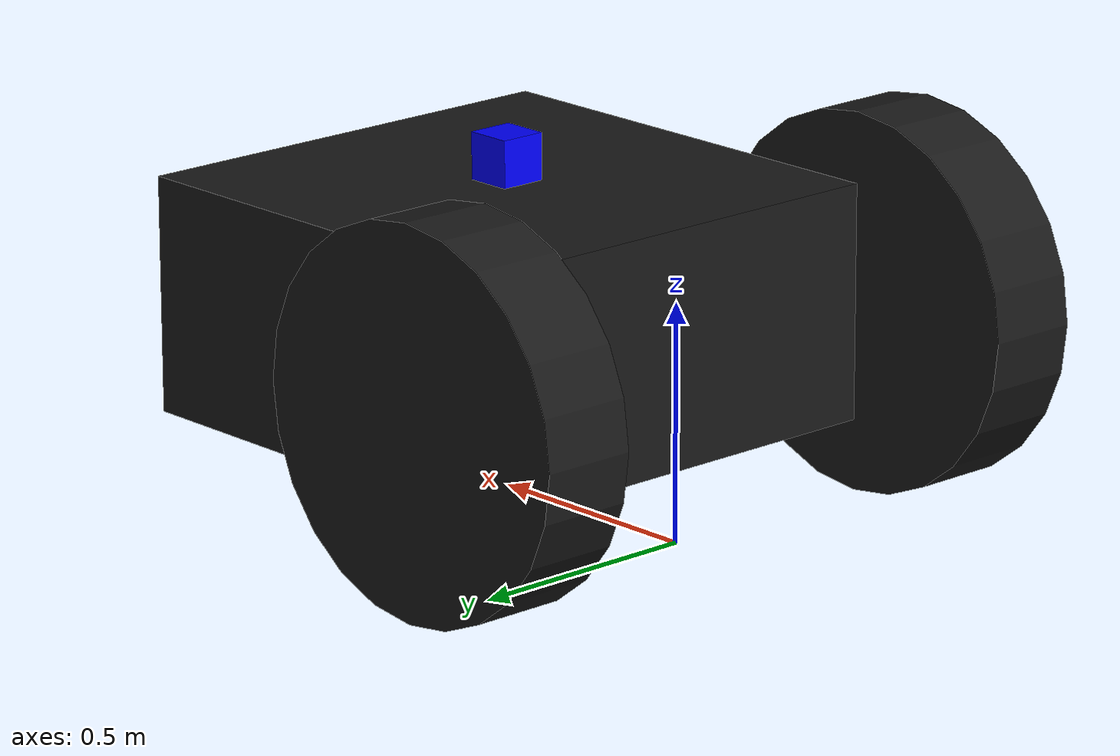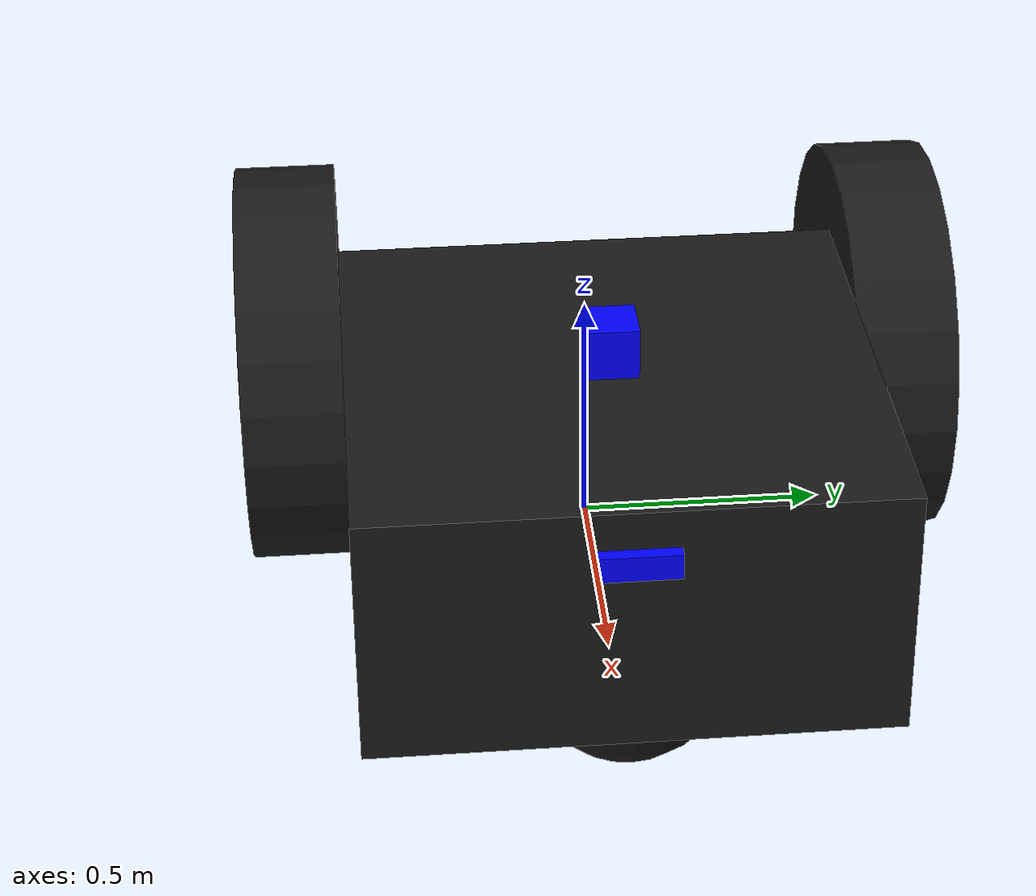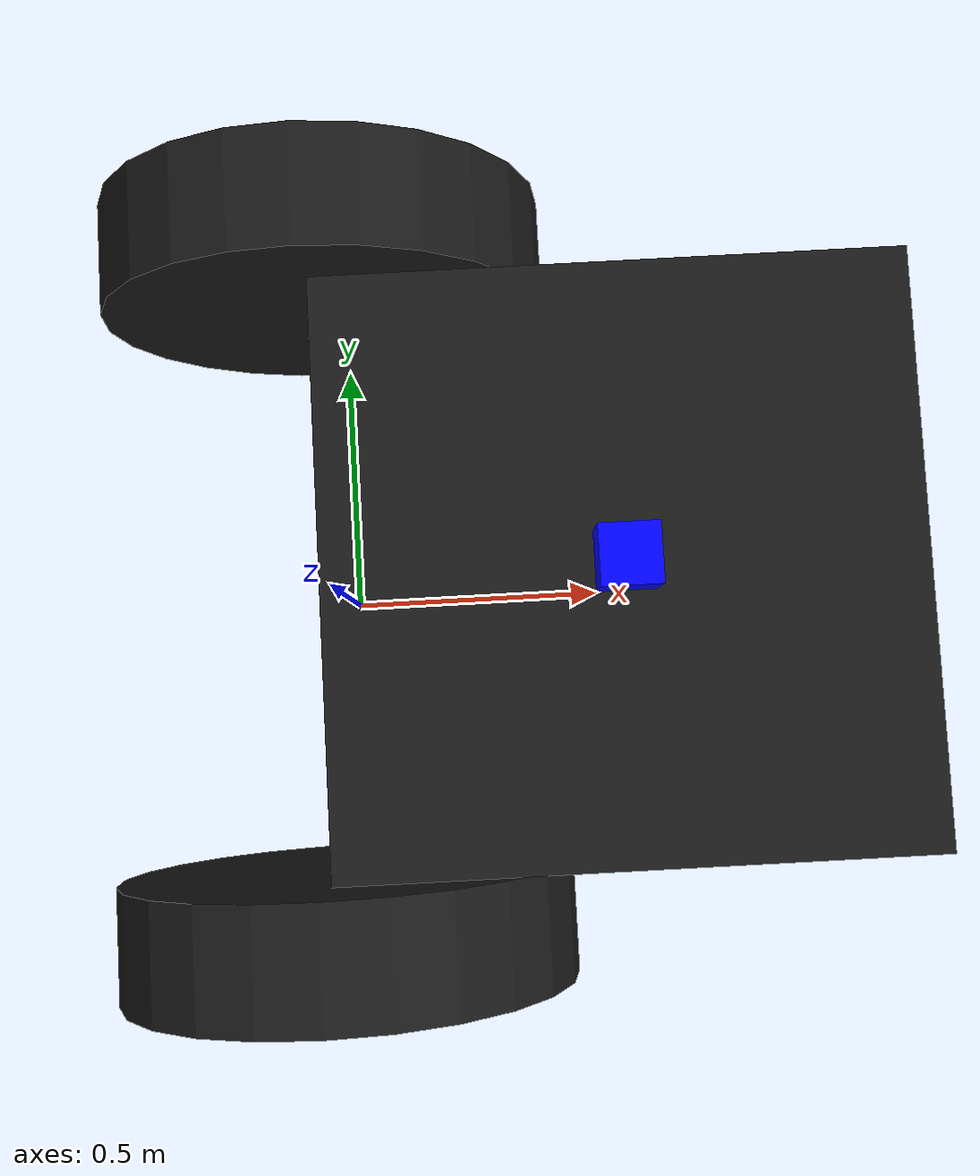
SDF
<?xml version="1.0" ?>
<sdf version='1.9'>

    <model name='f1d2' canonical_link='base_link'>
        <plugin name='ignition::gazebo::systems::Imu' filename='ignition-gazebo-imu-system'/>
        <plugin name='ignition::gazebo::systems::Sensors' filename='ignition-gazebo-sensors-system'>
            <render_engine>ogre2</render_engine>
        </plugin>

        <pose>0 0 0 0 0 0</pose>
        <link name='base_link'>
            <pose>0.5 0 0.4 0 -0 0</pose>
            <inertial>
                <mass>1.14395</mass>
                <inertia>
                    <ixx>0.126164</ixx>
                    <ixy>0</ixy>
                    <ixz>0</ixz>
                    <iyy>0.41651</iyy>
                    <iyz>0</iyz>
                    <izz>0.481014</izz>
                </inertia>
                <pose>0 0 0 0 -0 0</pose>
            </inertial>
            <visual name='visual'>
                <geometry>
                    <box>
                        <size>1 1 0.5</size>
                    </box>
                </geometry>
                <material>
                    <ambient>0.1 0.1 0.1 1</ambient>
                    <diffuse>0.1 0.1 0.1 1</diffuse>
                    <specular>0.1 0.1 0.1 1</specular>
                </material>
            </visual>
            <collision name='collision'>
                <geometry>
                    <box>
                        <size>1 1 0.5</size>
                    </box>
                </geometry>
                <surface>
                    <friction>
                        <ode/>
                    </friction>
                    <bounce/>
                    <contact/>
                </surface>
            </collision>
            <sensor name='imu_sensor' type='imu'>
                <pose>0 0 0 0 -0 0</pose>
                <topic>imu</topic>
                <update_rate>1</update_rate>
                <enable_metrics>false</enable_metrics>
                <imu>
                    <orientation_reference_frame>
                        <localization>CUSTOM</localization>
                        <custom_rpy>0 0 0</custom_rpy>
                        <grav_dir_x>1 0 0</grav_dir_x>
                    </orientation_reference_frame>
                    <angular_velocity>
                        <x>
                            <noise type='none'>
                                <mean>0</mean>
                                <stddev>0</stddev>
                                <bias_mean>0</bias_mean>
                                <bias_stddev>0</bias_stddev>
                                <dynamic_bias_stddev>0</dynamic_bias_stddev>
                                <dynamic_bias_correlation_time>0</dynamic_bias_correlation_time>
                                <precision>0</precision>
                            </noise>
                        </x>
                        <y>
                            <noise type='none'>
                                <mean>0</mean>
                                <stddev>0</stddev>
                                <bias_mean>0</bias_mean>
                                <bias_stddev>0</bias_stddev>
                                <dynamic_bias_stddev>0</dynamic_bias_stddev>
                                <dynamic_bias_correlation_time>0</dynamic_bias_correlation_time>
                                <precision>0</precision>
                            </noise>
                        </y>
                        <z>
                            <noise type='none'>
                                <mean>0</mean>
                                <stddev>0</stddev>
                                <bias_mean>0</bias_mean>
                                <bias_stddev>0</bias_stddev>
                                <dynamic_bias_stddev>0</dynamic_bias_stddev>
                                <dynamic_bias_correlation_time>0</dynamic_bias_correlation_time>
                                <precision>0</precision>
                            </noise>
                        </z>
                    </angular_velocity>
                    <linear_acceleration>
                        <x>
                            <noise type='none'>
                                <mean>0</mean>
                                <stddev>0</stddev>
                                <bias_mean>0</bias_mean>
                                <bias_stddev>0</bias_stddev>
                                <dynamic_bias_stddev>0</dynamic_bias_stddev>
                                <dynamic_bias_correlation_time>0</dynamic_bias_correlation_time>
                                <precision>0</precision>
                            </noise>
                        </x>
                        <y>
                            <noise type='none'>
                                <mean>0</mean>
                                <stddev>0</stddev>
                                <bias_mean>0</bias_mean>
                                <bias_stddev>0</bias_stddev>
                                <dynamic_bias_stddev>0</dynamic_bias_stddev>
                                <dynamic_bias_correlation_time>0</dynamic_bias_correlation_time>
                                <precision>0</precision>
                            </noise>
                        </y>
                        <z>
                            <noise type='none'>
                                <mean>0</mean>
                                <stddev>0</stddev>
                                <bias_mean>0</bias_mean>
                                <bias_stddev>0</bias_stddev>
                                <dynamic_bias_stddev>0</dynamic_bias_stddev>
                                <dynamic_bias_correlation_time>0</dynamic_bias_correlation_time>
                                <precision>0</precision>
                            </noise>
                        </z>
                    </linear_acceleration>
                    <enable_orientation>true</enable_orientation>
                </imu>
            </sensor>
            <enable_wind>false</enable_wind>
        </link>

        <link name='left_wheel'>
            <pose>-0 0.6 0.4 -1.5707 -0 0</pose>
            <inertial>
                <mass>2</mass>
                <inertia>
                    <ixx>0.145</ixx>
                    <ixy>0</ixy>
                    <ixz>0</ixz>
                    <iyy>0.145</iyy>
                    <iyz>0</iyz>
                    <izz>0.125</izz>
                </inertia>
                <pose>0 0 0 0 -0 0</pose>
            </inertial>
            <visual name='visual'>
                <geometry>
                    <cylinder>
                        <radius>0.4</radius>
                        <length>0.2</length>
                    </cylinder>
                </geometry>
                <material>
                    <ambient>0.1 0.1 0.1 1</ambient>
                    <diffuse>0.1 0.1 0.1 1</diffuse>
                    <specular>0.1 0.1 0.1 1</specular>
                </material>
            </visual>
            <collision name='collision'>
                <geometry>
                    <cylinder>
                        <radius>0.4</radius>
                        <length>0.2</length>
                    </cylinder>
                </geometry>
                <surface>
                    <friction>
                        <ode/>
                    </friction>
                    <bounce/>
                    <contact/>
                </surface>
            </collision>
            <enable_wind>false</enable_wind>
        </link>
        <link name='right_wheel'>
            <pose>-0 -0.6 0.4 -1.5707 -0 0</pose>
            <inertial>
                <mass>1</mass>
                <inertia>
                    <ixx>0.145832</ixx>
                    <ixy>0</ixy>
                    <ixz>0</ixz>
                    <iyy>0.145832</iyy>
                    <iyz>0</iyz>
                    <izz>0.125</izz>
                </inertia>
                <pose>0 0 0 0 -0 0</pose>
            </inertial>
            <visual name='visual'>
                <geometry>
                    <cylinder>
                        <radius>0.4</radius>
                        <length>0.2</length>
                    </cylinder>
                </geometry>
                <material>
                    <ambient>0.1 0.1 0.1 1</ambient>
                    <diffuse>0.1 0.1 0.1 1</diffuse>
                    <specular>0.1 0.1 0.1 1</specular>
                </material>
            </visual>
            <collision name='collision'>
                <geometry>
                    <cylinder>
                        <radius>0.4</radius>
                        <length>0.2</length>
                    </cylinder>
                </geometry>
                <surface>
                    <friction>
                        <ode/>
                    </friction>
                    <bounce/>
                    <contact/>
                </surface>
            </collision>
            <enable_wind>false</enable_wind>
        </link>

        <joint name="lidar_box_joint" type="fixed">
            <parent>base_link</parent>
            <child>lidar_box</child>
        </joint>

        <frame name='lidar_box_frame' attached_to='base_link'>
            <pose>0 0 0.3 0 0 0</pose>
        </frame>
        <link name='lidar_box'>
            <pose relative_to='lidar_box_frame'/>

            <static>true</static>
            <inertial>
                <mass>0.3</mass>
                <inertia>
                    <ixx>0.01</ixx>
                    <ixy>0</ixy>
                    <ixz>0</ixz>
                    <iyy>0.04</iyy>
                    <iyz>0</iyz>
                    <izz>0.04</izz>
                </inertia>
                <pose>0 0 0 0 -0 0</pose>
            </inertial>
            <visual name='visual'>
                <geometry>
                    <box>
                        <size>0.1 0.1 0.1</size>
                    </box>
                </geometry>
                <material>
                    <ambient>0 0 1 1</ambient>
                    <diffuse>0 0 1 1</diffuse>
                    <specular>0 0 1 1</specular>
                </material>
            </visual>
            <collision name='collision'>
                <geometry>
                    <box>
                        <size>0.1 0.1 0.1</size>
                    </box>
                </geometry>
                <surface>
                    <friction>
                        <ode/>
                    </friction>
                    <bounce/>
                    <contact/>
                </surface>
            </collision>
            <sensor name='gpu_lidar' type='gpu_lidar'>

                <topic>scan</topic>
                <update_rate>10</update_rate>
                <enable_metrics>false</enable_metrics>
                <lidar>
                    <scan>
                        <horizontal>
                            <samples>640</samples>
                            <resolution>1</resolution>
                            <min_angle>-1.57</min_angle>
                            <max_angle>1.57</max_angle>
                        </horizontal>
                        <vertical>
                            <samples>1</samples>
                            <min_angle>0</min_angle>
                            <max_angle>0</max_angle>
                            <resolution>0.01</resolution>
                        </vertical>
                    </scan>
                    <range>
                        <min>0.08</min>
                        <max>30</max>
                        <resolution>0.01</resolution>
                    </range>
                    <noise>
                        <type>none</type>
                        <mean>0</mean>
                        <stddev>0</stddev>
                    </noise>
                    <visibility_mask>4294967295</visibility_mask>
                </lidar>
            </sensor>

        </link>
        <joint name="camera_box_joint" type="fixed">
            <parent>base_link</parent>
            <child>camera_box</child>
        </joint>
        <frame name='camera_box_frame' attached_to='base_link'>
            <pose>0.5 0 0.15 0 0 0</pose>
        </frame>
        <link name='camera_box'>
            <pose relative_to='camera_box_frame'/>
            <static>true</static>
            <inertial>
                <mass>0.3</mass>
                <inertia>
                    <ixx>0.01</ixx>
                    <ixy>0</ixy>
                    <ixz>0</ixz>
                    <iyy>0.04</iyy>
                    <iyz>0</iyz>
                    <izz>0.04</izz>
                </inertia>
                <pose>0 0 0 0 -0 0</pose>
            </inertial>
            <visual name='visual'>
                <geometry>
                    <box>
                        <size>0.05 0.15 0.05</size>
                    </box>
                </geometry>
                <material>
                    <ambient>0 0 1 1</ambient>
                    <diffuse>0 0 1 1</diffuse>
                    <specular>0 0 1 1</specular>
                </material>
            </visual>
            <collision name='collision'>
                <geometry>
                    <box>
                        <size>0.05 0.15 0.05</size>
                    </box>
                </geometry>
                <surface>
                    <friction>
                        <ode/>
                    </friction>
                    <bounce/>
                    <contact/>
                </surface>
            </collision>
            <sensor name='camera' type='camera'>
                <topic>/camera_front/image_raw</topic>
                <update_rate>10</update_rate>
                <enable_metrics>false</enable_metrics>
                <camera name='__default__'>
                    <pose>0 0 0 0 -0 0</pose>
                    <horizontal_fov>1.396261</horizontal_fov>
                    <image>
                        <width>600</width>
                        <height>600</height>
                        <format>RGB_INT8</format>
                        <anti_aliasing>4</anti_aliasing>
                    </image>
                    <camera_info_topic>__default__</camera_info_topic>
                    <trigger_topic></trigger_topic>
                    <triggered>false</triggered>
                    <clip>
                        <near>0.02</near>
                        <far>300</far>
                    </clip>
                    <save enabled='false'>
                        <path>__default__</path>
                    </save>
                    <visibility_mask>4294967295</visibility_mask>
                    <noise>
                        <type>none</type>
                        <mean>0</mean>
                        <stddev>0</stddev>
                    </noise>
                    <distortion>
                        <k1>0</k1>
                        <k2>0</k2>
                        <k3>0</k3>
                        <p1>0</p1>
                        <p2>0</p2>
                        <center>0.5 0.5</center>
                    </distortion>
                    <lens>
                        <type>stereographic</type>
                        <scale_to_hfov>true</scale_to_hfov>
                        <cutoff_angle>1.5708</cutoff_angle>
                        <env_texture_size>256</env_texture_size>
                    </lens>
                    <optical_frame_id></optical_frame_id>
                </camera>
            </sensor>
            <sensor name='depth_camera' type='depth_camera'>
                <topic>/camera_front/depth_image_raw</topic>
                <update_rate>10</update_rate>
                <enable_metrics>false</enable_metrics>
                <camera name='__default__'>
                    <pose>0 0 0 0 -0 0</pose>
                    <horizontal_fov>1.046</horizontal_fov>
                    <image>
                        <width>320</width>
                        <height>240</height>
                        <format>R_FLOAT32</format>
                        <anti_aliasing>4</anti_aliasing>
                    </image>
                    <camera_info_topic>__default__</camera_info_topic>
                    <trigger_topic></trigger_topic>
                    <triggered>false</triggered>
                    <clip>
                        <near>0.1</near>
                        <far>100</far>
                    </clip>
                    <save enabled='false'>
                        <path>__default__</path>
                    </save>
                    <visibility_mask>4294967295</visibility_mask>
                    <noise>
                        <type>none</type>
                        <mean>0</mean>
                        <stddev>0</stddev>
                    </noise>
                    <distortion>
                        <k1>0</k1>
                        <k2>0</k2>
                        <k3>0</k3>
                        <p1>0</p1>
                        <p2>0</p2>
                        <center>0.5 0.5</center>
                    </distortion>
                    <lens>
                        <type>stereographic</type>
                        <scale_to_hfov>true</scale_to_hfov>
                        <cutoff_angle>1.5708</cutoff_angle>
                        <env_texture_size>256</env_texture_size>
                    </lens>
                    <optical_frame_id></optical_frame_id>
                </camera>
            </sensor>
        </link>
        <frame name='caster_frame' attached_to='base_link'>
            <pose>0.3 0 -0.2 0 0 0</pose>
        </frame>
        <link name='caster'>
            <pose relative_to='caster_frame'/>
            <inertial>
                <mass>1</mass>
                <inertia>
                    <ixx>0.1</ixx>

                    <ixy>0</ixy>
                    <ixz>0</ixz>
                    <iyy>0.1</iyy>
                    <iyz>0</iyz>
                    <izz>0.1</izz>
                </inertia>
                <pose>0 0 0 0 -0 0</pose>
            </inertial>
            <visual name='visual'>
                <geometry>
                    <sphere>
                        <radius>0.2</radius>
                    </sphere>
                </geometry>
                <material>
                    <ambient>0.1 0.1 0.1 1</ambient>
                    <diffuse>0.1 0.1 0.1 1</diffuse>
                    <specular>0.1 0.1 0.1 1</specular>
                </material>
            </visual>
            <collision name='collision'>
                <geometry>
                    <sphere>
                        <radius>0.2</radius>
                    </sphere>
                </geometry>
                <surface>
                    <friction>
                        <ode/>
                    </friction>
                    <bounce/>
                    <contact/>
                </surface>
            </collision>
            <enable_wind>false</enable_wind>
        </link>
        <joint name='left_wheel_joint' type='revolute'>
            <pose>0 0 0 0 -0 0</pose>
            <parent>base_link</parent>
            <child>left_wheel</child>
            <axis>
                <xyz>0 9.6e-05 1</xyz>
                <limit>
                    <lower>-1.7976900000000001e+308</lower>
                    <upper>1.7976900000000001e+308</upper>
                    <effort>inf</effort>
                    <velocity>inf</velocity>
                    <stiffness>100000000</stiffness>
                    <dissipation>1</dissipation>
                </limit>
                <dynamics>
                    <spring_reference>0</spring_reference>
                    <spring_stiffness>0</spring_stiffness>
                    <damping>0</damping>
                    <friction>0</friction>
                </dynamics>
            </axis>
        </joint>
        <joint name='right_wheel_joint' type='revolute'>
            <pose>0 0 0 0 -0 0</pose>
            <parent>base_link</parent>
            <child>right_wheel</child>
            <axis>
                <xyz>0 9.6e-05 1</xyz>
                <limit>
                    <lower>-1.7976900000000001e+308</lower>
                    <upper>1.7976900000000001e+308</upper>
                    <effort>inf</effort>
                    <velocity>inf</velocity>
                    <stiffness>100000000</stiffness>
                    <dissipation>1</dissipation>
                </limit>
                <dynamics>
                    <spring_reference>0</spring_reference>
                    <spring_stiffness>0</spring_stiffness>
                    <damping>0</damping>
                    <friction>0</friction>
                </dynamics>
            </axis>
        </joint>
        <joint name='caster_wheel' type='ball'>
            <parent>base_link</parent>
            <child>caster</child>
            <pose>0 0 0 0 -0 0</pose>
        </joint>
        <plugin name='ignition::gazebo::systems::DiffDrive' filename='ignition-gazebo-diff-drive-system'>
            <left_joint>left_wheel_joint</left_joint>
            <right_joint>right_wheel_joint</right_joint>
            <wheel_separation>1.2</wheel_separation>
            <wheel_radius>0.4</wheel_radius>
            <odom_publish_frequency>50</odom_publish_frequency>
            <topic>cmd_vel</topic>
            <frame_id>odom</frame_id>
            <child_frame_id>base_link</child_frame_id>
        </plugin>
        <static>false</static>
        <self_collide>false</self_collide>
    </model>
</sdf>
